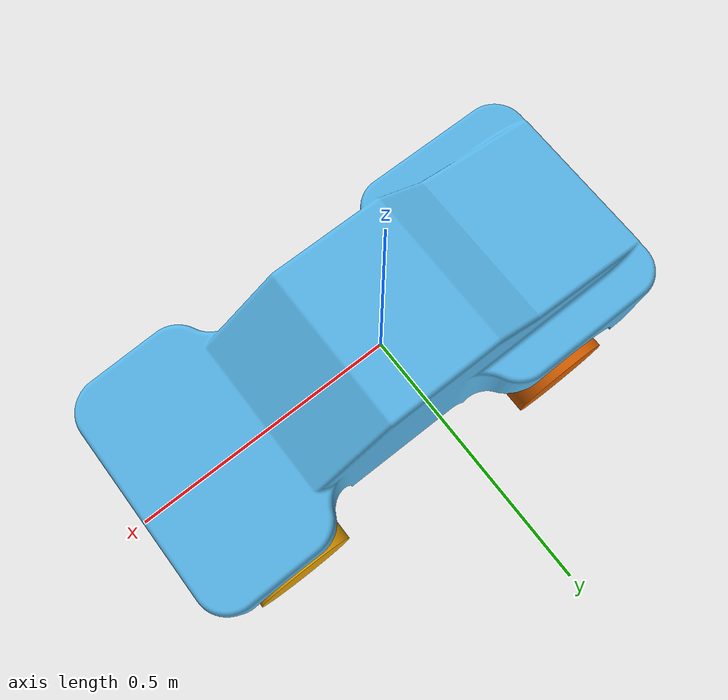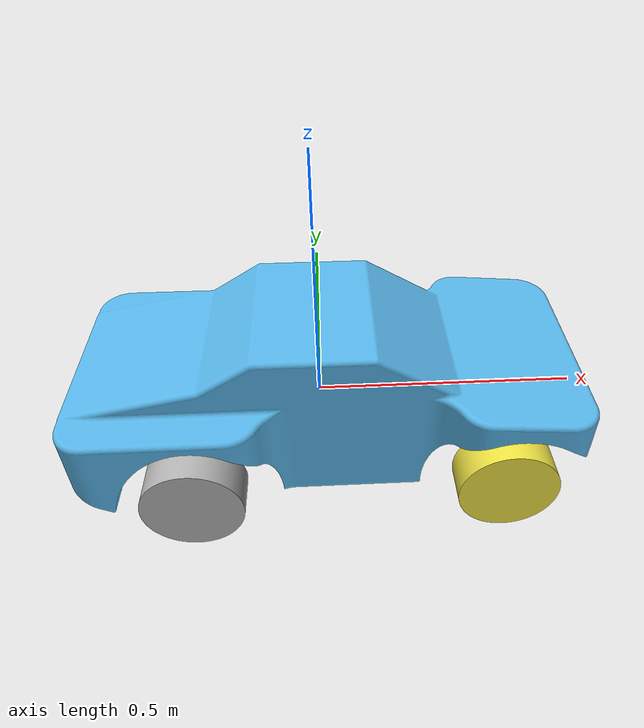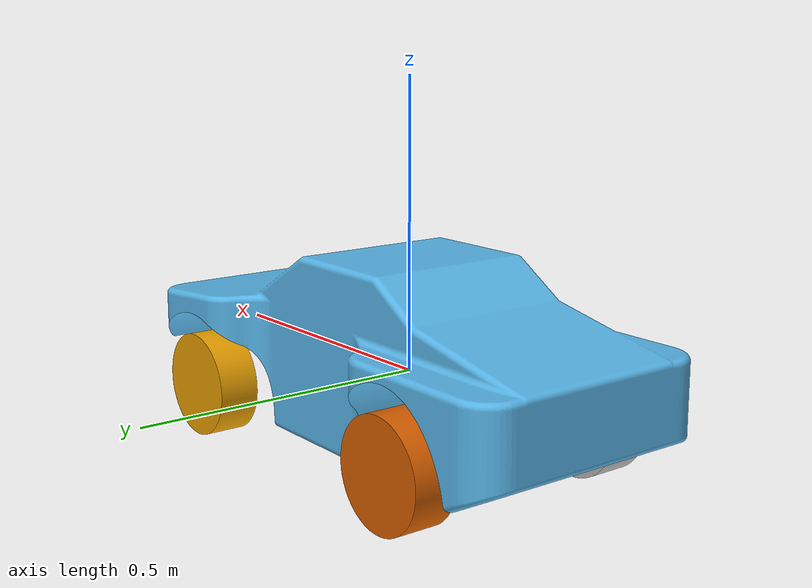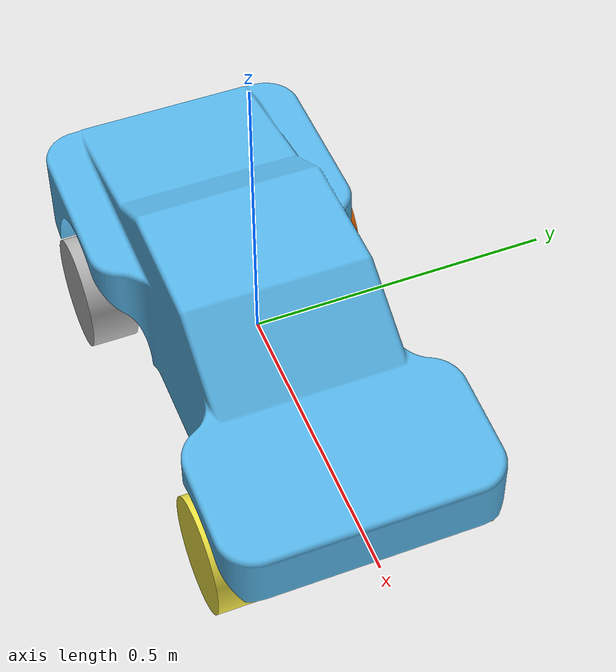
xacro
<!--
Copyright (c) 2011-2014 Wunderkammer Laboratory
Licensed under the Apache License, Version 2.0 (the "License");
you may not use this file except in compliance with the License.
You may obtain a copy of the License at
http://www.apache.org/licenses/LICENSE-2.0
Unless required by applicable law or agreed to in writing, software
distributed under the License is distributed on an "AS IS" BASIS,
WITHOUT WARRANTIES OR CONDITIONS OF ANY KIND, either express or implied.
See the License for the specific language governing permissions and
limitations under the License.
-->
<?xml version="1.0"?>

<robot name="autorally_platform" xmlns:xacro="http://www.ros.org/wiki/xacro">
  <!-- Degree-to-radian conversions -->
  <xacro:property name="degrees_45" value="0.785398163"/>
  <xacro:property name="degrees_21" value="0.3665191429"/>
  <xacro:property name="degrees_90" value="1.57079633"/>

  <!-- chassis_length is measured along the x axis, chassis_width
       along the y axis, and chassis_height along the z axis. -->
  <xacro:property name="chassis_length" value="0.90"/>
  <xacro:property name="chassis_width" value="0.25"/>
  <xacro:property name="chassis_height" value="0.25"/>
  <xacro:property name="chassis_mass" value="20.5"/>
  <xacro:property name="chassis_cm_height" value="0.12"/>
  <xacro:property name="chassis_cm_to_rear_shock" value="0.23"/>
  <xacro:property name="chassis_cm_to_front_shock" value="0.34"/>

  <xacro:property name="hub_dia" value="0.024"/>
  <xacro:property name="tire_dia" value="0.19"/>
  <xacro:property name="front_tire_width" value="0.072644"/>
  <xacro:property name="front_wheel_mass" value="0.82"/>
  <xacro:property name="rear_tire_width" value="0.0762"/>
  <xacro:property name="rear_wheel_mass" value="0.89"/>

  <xacro:property name="wheelbase" value="0.570"/>
  <xacro:property name="hex_hub_dist" value="0.4"/>

  <xacro:property name="front_wheel_travel" value="0.1"/>
  <xacro:property name="front_shock_z_offset" value="0.11"/>
  <xacro:property name="rear_wheel_travel" value="0.11"/>
  <xacro:property name="rear_shock_z_offset" value="0.12"/>

  <!-- shock_eff_limit is 2 * ((shock_stroke / 2) * shock_spring_constant) N.
       For shock_spring_constants, refer to
       autoRallyPlatformJointCtrlrParams.yaml for spring's constants -->
  <!-- front shock: 2 * ((0.06 / 2) * 3152.28303) = 189.1369818-->
  <!-- rear shock: 2 * ((0.07 / 2) * 4234.88528273) = 296.441969791-->
  <xacro:property name="front_shock_eff_limit" value="189.1369818"/>
  <xacro:property name="rear_shock_eff_limit" value="296.441969791"/>
  <xacro:property name="shock_vel_limit" value="1000"/>

  <xacro:property name="front_axle_eff_limit" value="2"/>
  <xacro:property name="rear_axle_eff_limit" value="8"/>
  <xacro:property name="axle_vel_limit" value="282.315789474"/>

  <!-- These constants are used to simulate a  Savox SV-0235MG servo operated at
       7.4 V. servo_stall_torque is measured in N m. servo_no_load_speed is
       measured in rad/s. -->
  <!-- produces 486.1 oz-in = 3.432620346181713 n-m of torque -->
  <!-- no load speed 0.13 sec/60 deg -> (1/0.13)*60 deg/sec = 8.05536578 rad/s -->
  <xacro:property name="servo_stall_torque" value="3.432620346181713"/>
  <xacro:property name="servo_no_load_speed" value="8.05536578"/>

  <!-- arg to specify namespace -->
  <xacro:arg name="prefix" default=""/>
  <!-- arg to specify the track-->
  <xacro:arg name="track" default="marietta"/>

  <material name="chassis_mat">
    <color rgba="0.5 0.5 0.5 1"/>
  </material>

  <!-- Null inertial element. This is needed to make the model work with
       Gazebo. -->
  <xacro:macro name="null_inertial">
    <inertial>
      <mass value="0.001"/>
      <inertia ixx="0.001" ixy="0" ixz="0" iyy="0.001" iyz="0" izz="0.001"/>
    </inertial>
  </xacro:macro>

  <xacro:macro name="thick_walled_tube_inertial"
               params="inner_rad outer_rad height mass">
    <inertial>
      <mass value="${mass}"/>
      <inertia ixx="${(1 / 12) * mass * (3 * (inner_rad * inner_rad +
                    outer_rad * outer_rad) + height * height)}"
               ixy="0" ixz="0"
               iyy="0.0224048079"
               iyz="0"
               izz="${mass * (inner_rad * inner_rad +
                    outer_rad * outer_rad) / 2}"/>
    </inertial>
  </xacro:macro>

  <!-- Shock absorbers -->
  <xacro:macro name="front_shock"
               params="lr_prefix fr_prefix lr_reflect fr_reflect child">
    <joint name="${lr_prefix}_${fr_prefix}_shock" type="prismatic">
      <parent link="chassis"/>
      <child link="${child}"/>

      <!-- ${lr_reflect * ((hex_hub_dist / 2) + lr_reflect*(front_tire_width / 2))} -->
      <origin xyz="${fr_reflect * chassis_cm_to_front_shock}
                   ${lr_reflect * ((hex_hub_dist / 2) - 0.01)}
                   ${-chassis_cm_height + front_shock_z_offset/2}"/>
      <axis xyz="0 0 -1"/>
      <limit lower="${-front_wheel_travel / 2}" upper="${front_wheel_travel / 2}"
             effort="${front_shock_eff_limit}" velocity="${shock_vel_limit}"/>
      <dynamics damping="88" friction="0.0001"
                spring_stiffness="3152" spring_reference="0.08"/>
    </joint>
    <transmission name="${lr_prefix}_${fr_prefix}_shock_trans">
      <type>transmission_interface/SimpleTransmission</type>
      <joint name="${lr_prefix}_${fr_prefix}_shock">
        <hardwareInterface>hardware_interface/EffortJointInterface</hardwareInterface>
      </joint>
      <actuator name="${lr_prefix}_${fr_prefix}_shock_act">
        <!-- This hardwareInterface element exists for compatibility
             with ROS Hydro. -->
        <hardwareInterface>hardware_interface/EffortJointInterface</hardwareInterface>
        <mechanicalReduction>1</mechanicalReduction>
      </actuator>
    </transmission>
  </xacro:macro>

  <xacro:macro name="rear_shock"
               params="lr_prefix fr_prefix lr_reflect fr_reflect child">
    <joint name="${lr_prefix}_${fr_prefix}_shock" type="prismatic">
      <parent link="chassis"/>
      <child link="${child}"/>

      <!-- ${lr_reflect * ((hex_hub_dist / 2) + lr_reflect*(front_tire_width / 2))} -->
      <origin xyz="${fr_reflect * chassis_cm_to_rear_shock}
                   ${lr_reflect * ((hex_hub_dist / 2) )}
                   ${-chassis_height/2 + rear_shock_z_offset/2}"/>
      <axis xyz="0 0 -1"/>
      <limit lower="${-rear_wheel_travel / 2}" upper="${rear_wheel_travel / 2}"
             effort="${rear_shock_eff_limit}" velocity="${shock_vel_limit}"/>
      <dynamics damping="88" friction="0.0"/>
    </joint>
    <transmission name="${lr_prefix}_${fr_prefix}_shock_trans">
      <type>transmission_interface/SimpleTransmission</type>
      <joint name="${lr_prefix}_${fr_prefix}_shock">
        <hardwareInterface>hardware_interface/EffortJointInterface</hardwareInterface>
      </joint>
      <actuator name="${lr_prefix}_${fr_prefix}_shock_act">
        <!-- This hardwareInterface element exists for compatibility
             with ROS Hydro. -->
        <hardwareInterface>hardware_interface/EffortJointInterface</hardwareInterface>
        <mechanicalReduction>1</mechanicalReduction>
      </actuator>
    </transmission>
  </xacro:macro>

  <!-- The "wheel" macro defines an axle carrier, axle, and wheel. -->
  <xacro:macro name="wheel" params="lr_prefix fr_prefix lr_reflect tire_width wheel_mass axle_eff_limit wheel_model cant">
    <link name="${lr_prefix}_${fr_prefix}_axle_carrier">
      <xacro:null_inertial/>
    </link>

    <!-- The left and right axles have the same axis so that identical
         rotation values cause the wheels to rotate in the same direction. -->
    <joint name="${lr_prefix}_${fr_prefix}_axle" type="continuous">
      <parent link="${lr_prefix}_${fr_prefix}_axle_carrier"/>
      <child link="${lr_prefix}_${fr_prefix}_wheel"/>
      <origin xyz="0 0 0" rpy="${degrees_90} 0 0"/>
      <axis xyz="0 0 -1"/>
      <limit effort="${axle_eff_limit}" velocity="${axle_vel_limit}"/>
      <dynamics damping="0.001" friction="0.5"/>

    </joint>

    <transmission name="${lr_prefix}_${fr_prefix}_axle_trans">
      <type>transmission_interface/SimpleTransmission</type>
      <joint name="${lr_prefix}_${fr_prefix}_axle">
        <hardwareInterface>hardware_interface/EffortJointInterface</hardwareInterface>
      </joint>
      <actuator name="${lr_prefix}_${fr_prefix}_axle_act">
        <!-- This hardwareInterface element exists for compatibility
             with ROS Hydro. -->
        <hardwareInterface>hardware_interface/EffortJointInterface</hardwareInterface>
        <mechanicalReduction>1</mechanicalReduction>
      </actuator>
    </transmission>

    <link name="${lr_prefix}_${fr_prefix}_wheel">
      <visual>
        <origin xyz="0 0 0"/>
        <geometry>
          <mesh filename="${wheel_model}" />
        </geometry>
      </visual>

      <collision name="collision">
        <origin xyz="0 0 0"/>
        <geometry>
          <mesh filename="${wheel_model}" />
        </geometry>
      </collision>

      <collision name="material">
        <origin xyz="0 0 0"/>
        <geometry>
          <mesh filename="${wheel_model}" />
        </geometry>
      </collision>

      <xacro:thick_walled_tube_inertial
          inner_rad="${hub_dia / 2.0}" outer_rad="${tire_dia / 2.0}"
          height="${tire_width}" mass="${wheel_mass}"/>
      <max_contacts>1</max_contacts>
      <surface>
        <contact>
          <ode>
            <soft_cfm>0.000000001</soft_cfm>
            <soft_erp>0.2</soft_erp>
            <kp>1e+10</kp>
            <kd>10</kd>
            <max_vel>0.01</max_vel>
            <min_depth>0.005</min_depth>
          </ode>
        </contact>
      </surface>

    </link>

    <gazebo reference="${lr_prefix}_${fr_prefix}_wheel">
      <mu1>0.7</mu1>
      <mu2>0.75</mu2>
    </gazebo>

  </xacro:macro>

  <!-- Front wheel -->
  <xacro:macro name="front_wheel"
               params="lr_prefix fr_prefix lr_reflect fr_reflect tire_width
                       wheel_mass axle_eff_limit">
    <xacro:front_shock lr_prefix="${lr_prefix}" fr_prefix="${fr_prefix}"
                       lr_reflect="${lr_reflect}" fr_reflect="${fr_reflect}"
                       child="${lr_prefix}_steering_link"/>

    <link name="${lr_prefix}_steering_link">
      <xacro:null_inertial/>
    </link>

    <joint name="${lr_prefix}_steering_joint" type="revolute">
      <parent link="${lr_prefix}_steering_link"/>
      <child link="${lr_prefix}_${fr_prefix}_axle_carrier"/>
      <!-- cant the front wheels to improve traction -->
      <axis xyz="0 ${-lr_reflect*0.09950372}  0.99503719"/>
      <limit lower="${-degrees_21}" upper="${degrees_21}"
             effort="${servo_stall_torque}" velocity="${servo_no_load_speed}"/>
    </joint>

    <transmission name="${lr_prefix}_steering_trans">
      <type>transmission_interface/SimpleTransmission</type>
      <joint name="${lr_prefix}_steering_joint">
        <hardwareInterface>hardware_interface/EffortJointInterface</hardwareInterface>
      </joint>
      <actuator name="${lr_prefix}_steering_act">

        <!-- This hardwareInterface element exists for compatibility
             with ROS Hydro. -->
        <hardwareInterface>hardware_interface/EffortJointInterface</hardwareInterface>
        <mechanicalReduction>1</mechanicalReduction>
      </actuator>
    </transmission>

    <xacro:wheel lr_prefix="${lr_prefix}" fr_prefix="${fr_prefix}"
                 lr_reflect="${lr_reflect}" tire_width="${tire_width}"
                 wheel_mass="${wheel_mass}"
                 axle_eff_limit="${axle_eff_limit}"
                 wheel_model="package://autorally_description/urdf/cad/autoRallyPlatformFrontWheelTextured.dae"
                 cant="0.05"/>
  </xacro:macro>

  <!-- Rear wheel -->
  <xacro:macro name="rear_wheel"
               params="lr_prefix fr_prefix lr_reflect fr_reflect tire_width
                       wheel_mass axle_eff_limit">
    <xacro:rear_shock lr_prefix="${lr_prefix}" fr_prefix="${fr_prefix}"
                 lr_reflect="${lr_reflect}" fr_reflect="${fr_reflect}"
                 child="${lr_prefix}_${fr_prefix}_axle_carrier"/>
    <xacro:wheel lr_prefix="${lr_prefix}" fr_prefix="${fr_prefix}"
                 lr_reflect="${lr_reflect}" tire_width="${tire_width}"
                 wheel_mass="${wheel_mass}"
                 axle_eff_limit="${axle_eff_limit}"
                 wheel_model="package://autorally_description/urdf/cad/autoRallyPlatformRearWheelTextured.dae"
                 cant="-0.03"/>
  </xacro:macro>

  <!-- base_link must have geometry so that its axes can be displayed in
       rviz. -->
  <link name="base_link">
    <visual>
      <geometry>
        <box size="0.01 0.01 0.01"/>
      </geometry>
      <material name="chassis_mat"/>
    </visual>
  </link>

  <gazebo reference="base_link">
    <material>Gazebo/Grey</material>
  </gazebo>

  <!-- Chassis -->
  <link name="chassis">
    <visual>
      <origin xyz="${-chassis_length/2 + 0.15} 0 ${-chassis_cm_height}"
              rpy="0 0 0"/>

      <geometry>
        <mesh filename="package://autorally_description/urdf/cad/Vehicle_Texture.dae" scale="1 1 1" />
      </geometry>
    </visual>

    <collision>
      <origin xyz="${-chassis_length/2 + 0.2} 0 ${-chassis_cm_height}"
              rpy="0 0 0"/>

      <geometry>
        <mesh filename="package://autorally_description/urdf/cad/Vehicle_Texture.dae" scale="1 1 1" />
      </geometry>
    </collision>

    <inertial>
      <mass value="${chassis_mass}"/>
      <inertia ixx="0.003881755275"
               ixy="0" ixz="0"
               iyy="0.011310597718"
               iyz="0"
               izz="0.01243832479"/>
    </inertial>
  </link>
  <gazebo reference="chassis">
    <mu1>0.2</mu1>
    <mu2>0.2</mu2>
  </gazebo>

  <joint name="base_link_to_chasis" type="fixed">
    <axis xyz="0 -1 -1" />
    <parent link="base_link"/>
    <child link="chassis"/>
  </joint>

  <link name="gps_link">
    <collision>
      <geometry>
        <box size="0.1 0.1 0.1"/>
      </geometry>
    </collision>
    <inertial>
      <mass value="1e-5" />
      <origin xyz="0 0 0" rpy="0 0 0"/>
      <inertia ixx="1e-6" ixy="0" ixz="0" iyy="1e-6" iyz="0" izz="1e-6" />
    </inertial>
  </link>

  <joint name="gps_joint" type="fixed">
    <origin xyz="-0.36 0 0.1359" rpy="0 0 0"/>
    <parent link="base_link"/>
    <child link="gps_link"/>
  </joint>

  <link name="imu_link">
    <collision>
      <origin xyz="0 0 0" rpy="0 0 0"/>
      <geometry>
        <box size="0.1 0.1 0.1"/>
      </geometry>
    </collision>
    <inertial>
      <mass value="1e-5" />
      <origin xyz="0 0 0" rpy="0 0 0"/>
      <inertia ixx="1e-6" ixy="0" ixz="0" iyy="1e-6" iyz="0" izz="1e-6" />
    </inertial>
  </link>

  <joint name="imu_joint" type="fixed">
    <origin xyz="-0.039 0 0.0859" rpy="0 0 0"/>
    <parent link="base_link"/>
    <child link="imu_link"/>
  </joint>

  <joint name="camera_joint" type="fixed">
    <axis xyz="0 0 -1" />
    <origin xyz="0.127 0 0.2159" rpy="0 0 0"/>
    <parent link="base_link"/>
    <child link="camera_link"/>
  </joint>

 <link name="odom_ground_truth">
    <collision>
      <geometry>
        <box size="0.1 0.1 0.1"/>
      </geometry>
    </collision>
    <inertial>
      <mass value="1e-5" />
      <origin xyz="0 0 0" rpy="0 0 0"/>
      <inertia ixx="1e-6" ixy="0" ixz="0" iyy="1e-6" iyz="0" izz="1e-6" />
    </inertial>
  </link>

  <joint name="odom_ground_truth_joint" type="fixed">
    <axis xyz="0 0 0" />
    <origin xyz="-0.039 0 0.0859" rpy="0 0 0"/>
    <parent link="base_link"/>
    <child link="odom_ground_truth"/>
  </joint>

  <!-- Camera -->
  <link name="camera_link">
    <collision>
      <origin xyz="0 0 0" rpy="0 0 0"/>
      <geometry>
    <box size="0.02 0.02 0.02"/>
      </geometry>
    </collision>
    <inertial>
      <mass value="1e-5" />
      <origin xyz="0 0 0" rpy="0 0 0"/>
      <inertia ixx="1e-6" ixy="0" ixz="0" iyy="1e-6" iyz="0" izz="1e-6" />
    </inertial>

  </link>

  <!-- camera -->
  <gazebo reference="camera_link">
    <sensor type="multicamera" name="stereo_camera">
      <update_rate>30.0</update_rate>
      <camera name="left">
        <pose>0 0.07 0 0 0 0</pose>
        <horizontal_fov>1.3962634</horizontal_fov>
        <image>
          <width>1280</width>
          <height>1024</height>
          <format>R8G8B8</format>
        </image>
        <clip>
          <near>0.02</near>
          <far>300</far>
        </clip>
        <noise>
          <type>gaussian</type>
          <mean>0.0</mean>
          <stddev>0.009</stddev>
        </noise>
      </camera>
      <camera name="right">
        <pose>0.02 -0.07 0 0 0 0</pose>
        <horizontal_fov>1.3962634</horizontal_fov>
        <image>
          <width>1280</width>
          <height>1024</height>
          <format>R8G8B8</format>
        </image>
        <clip>
          <near>0.02</near>
          <far>300</far>
        </clip>
        <noise>
          <type>gaussian</type>
          <mean>0.0</mean>
          <stddev>0.009</stddev>
        </noise>
      </camera>
      <plugin name="stereo_camera_controller" filename="libgazebo_ros_multicamera.so">
        <robotNamespace>$(arg prefix)</robotNamespace>
        <alwaysOn>true</alwaysOn>
        <updateRate>60.0</updateRate>
        <cameraName>camera</cameraName>
        <imageTopicName>image_raw</imageTopicName>
        <cameraInfoTopicName>camera_info</cameraInfoTopicName>
        <frameName>left_camera_optical_frame</frameName>
        <hackBaseline>0.14</hackBaseline>
      </plugin>
    </sensor>
  </gazebo>

  <!-- Wheels -->
  <xacro:front_wheel lr_prefix="left" fr_prefix="front"
                     lr_reflect="1" fr_reflect="1"
                     tire_width="${front_tire_width}"
                     wheel_mass="${front_wheel_mass}"
                     axle_eff_limit="${front_axle_eff_limit}"/>
  <xacro:front_wheel lr_prefix="right" fr_prefix="front"
                     lr_reflect="-1" fr_reflect="1"
                     tire_width="${front_tire_width}"
                     wheel_mass="${front_wheel_mass}"
                     axle_eff_limit="${front_axle_eff_limit}"/>
  <xacro:rear_wheel lr_prefix="left" fr_prefix="rear"
                    lr_reflect="1" fr_reflect="-1"
                    tire_width="${rear_tire_width}"
                    wheel_mass="${rear_wheel_mass}"
                    axle_eff_limit="${rear_axle_eff_limit}"/>
  <xacro:rear_wheel lr_prefix="right" fr_prefix="rear"
                    lr_reflect="-1" fr_reflect="-1"
                    tire_width="${rear_tire_width}"
                    wheel_mass="${rear_wheel_mass}"
                    axle_eff_limit="${rear_axle_eff_limit}"/>

  <gazebo>
    <plugin name="gazebo_ros_control" filename="libgazebo_ros_control.so">
      <robotNamespace>$(arg prefix)</robotNamespace>
      <robotSimType>gazebo_ros_control/DefaultRobotHWSim</robotSimType>
      <legacyModeNS>true</legacyModeNS>
    </plugin>

    <plugin name="imu" filename="libhector_gazebo_ros_imu.so">
      <robotNamespace>$(arg prefix)</robotNamespace>
      <serviceName>$(arg prefix)/imu/calibrate</serviceName>
      <updateRate>200.0</updateRate>
      <bodyName>imu_link</bodyName>
      <frameId>imu_link</frameId>
      <topicName>imu/imu</topicName>
      <rpyOffset>0 0 0</rpyOffset>
      <xyzOffset>0 0 0</xyzOffset>
      <gaussianNoise>0.00000001</gaussianNoise>
      <accelDrift>0.00000001 0.00000001 0.00000001</accelDrift>
      <accelDriftFrequency>0.00000001 0.00000001 0.00000001</accelDriftFrequency>
      <accelGaussianNoise>0.00000001 0.00000001 0.00000001</accelGaussianNoise>
      <rateDrift>0.0 0.0 0.0</rateDrift>
      <rateDriftFrequency>0.0 0.0 0.0</rateDriftFrequency>
      <rateGaussianNoise>0.0 0.0 0.0</rateGaussianNoise>
      <headingDrift>0.0 0.0 0.0</headingDrift>
      <headingDriftFrequency>0.0 0.0 0.0</headingDriftFrequency>
      <headingGaussianNoise>0.0 0.0 0.0</headingGaussianNoise>
    </plugin>

    <plugin name="gps" filename="libhector_gazebo_ros_gps.so">
      <robotNamespace>$(arg prefix)</robotNamespace>
      <updateRate>20.0</updateRate>
      <bodyName>gps_link</bodyName>
      <frameId>gps_link</frameId>
      <topicName>gpsRoverStatus</topicName>
      <velocityTopicName>fix_velocity</velocityTopicName>
      <xacro:if value="${ '$(arg track)' == 'marietta'}" >
        <referenceLatitude>33.774497</referenceLatitude>
        <referenceLongitude>-84.405001</referenceLongitude>
        <referenceAltitude>309.0</referenceAltitude>
      </xacro:if >
      <xacro:if value="${ '$(arg track)' == 'ccrf'}" >
        <referenceLatitude>33.911071</referenceLatitude>
        <referenceLongitude>-84.530018</referenceLongitude>
        <referenceAltitude>297.607097</referenceAltitude>
      </xacro:if >
      <drift>0.001 0.001 0.001</drift>
      <gaussianNoise>0.0001 0.0001 0.0001</gaussianNoise>
      <velocityDrift>0 0 0</velocityDrift>
      <velocityGaussianNoise>0.005 0.005 0.05</velocityGaussianNoise>
    </plugin>

    <plugin name="p3d_base_controller" filename="libgazebo_ros_p3d.so">
      <alwaysOn>true</alwaysOn>
      <updateRate>200.0</updateRate>
      <bodyName>odom_ground_truth</bodyName>
      <topicName>ground_truth/state_raw</topicName>
      <gaussianNoise>0.00</gaussianNoise>
      <frameName>world</frameName>
      <!-- origin is at spawn location -->
      <xyzOffset>0 8.5 0</xyzOffset>
      <rpyOffset>0 0 0</rpyOffset>
    </plugin>

  </gazebo>
</robot>
